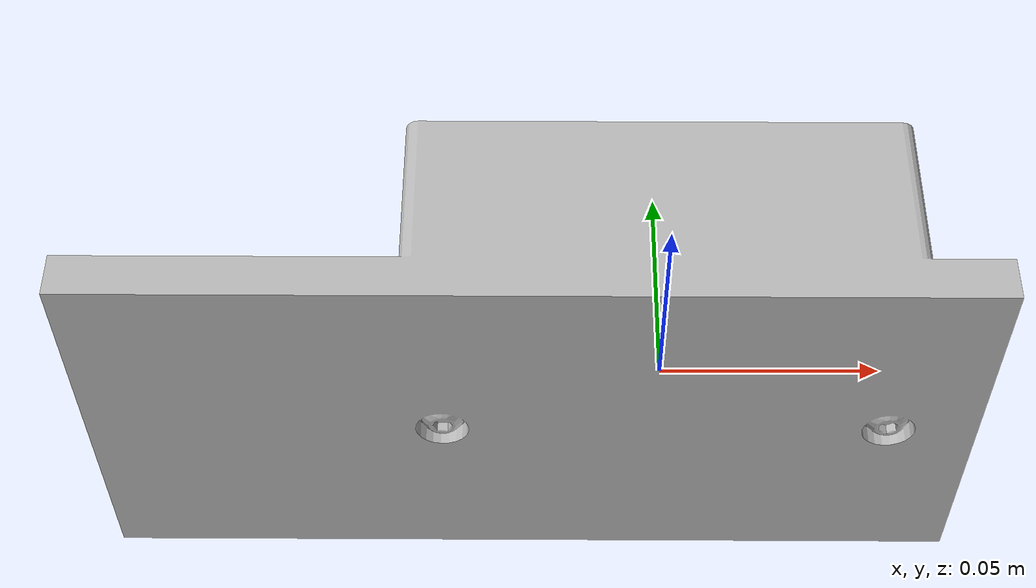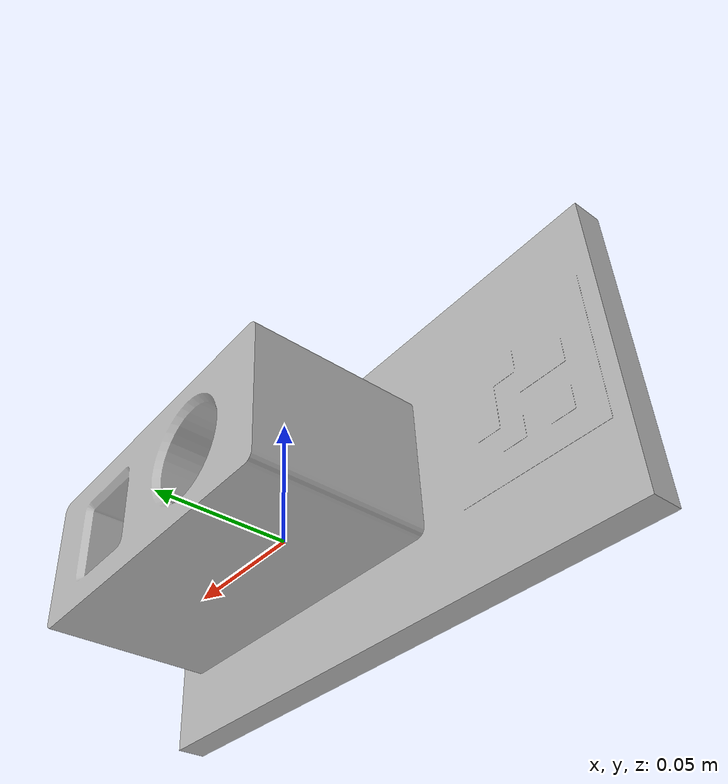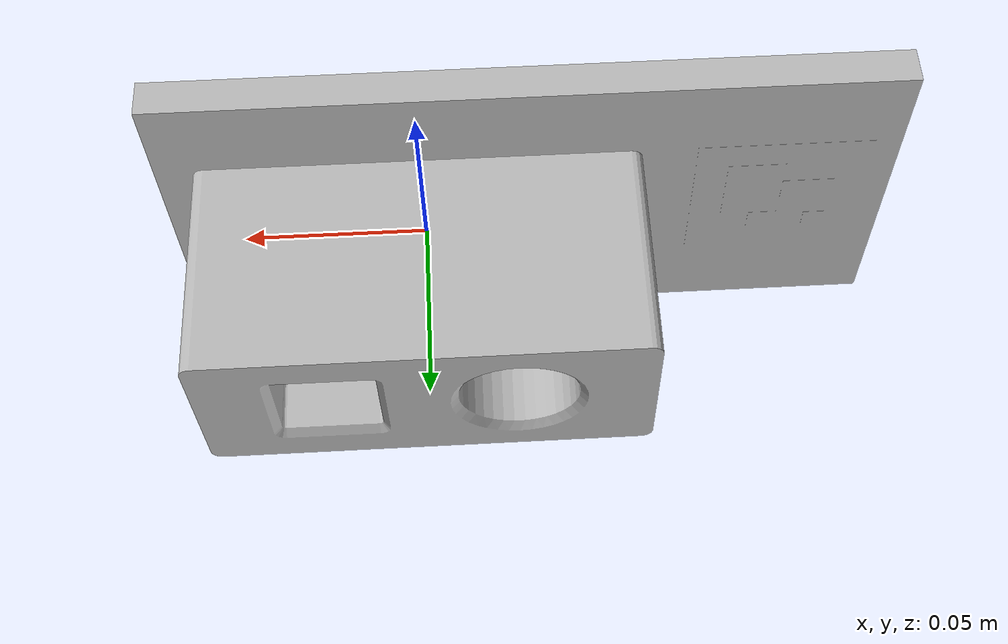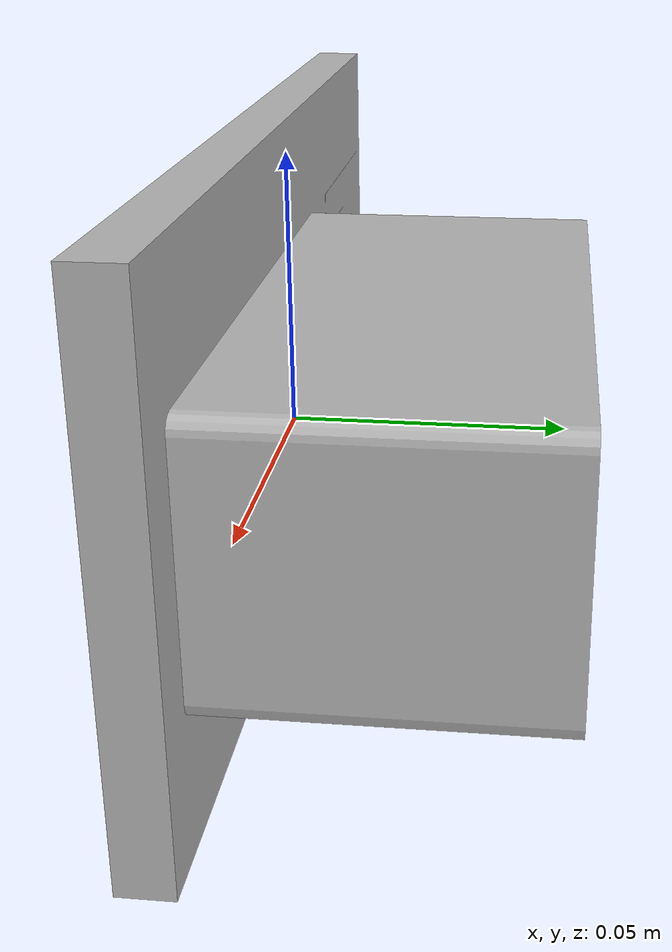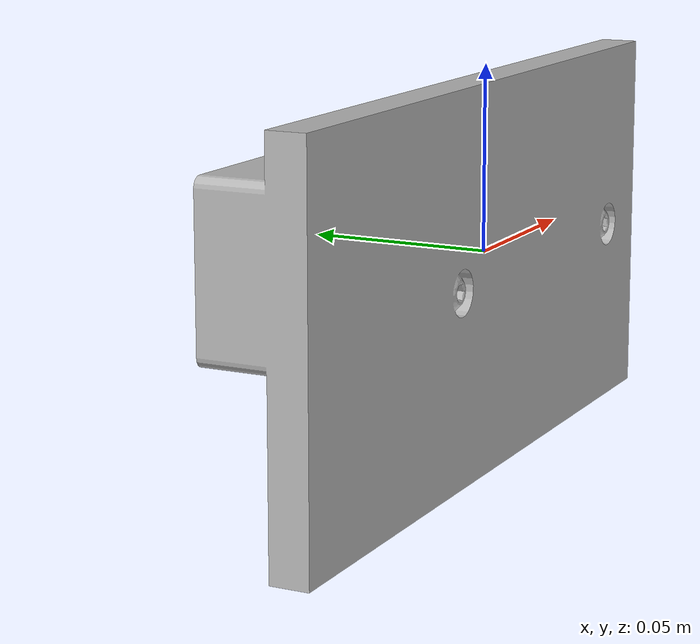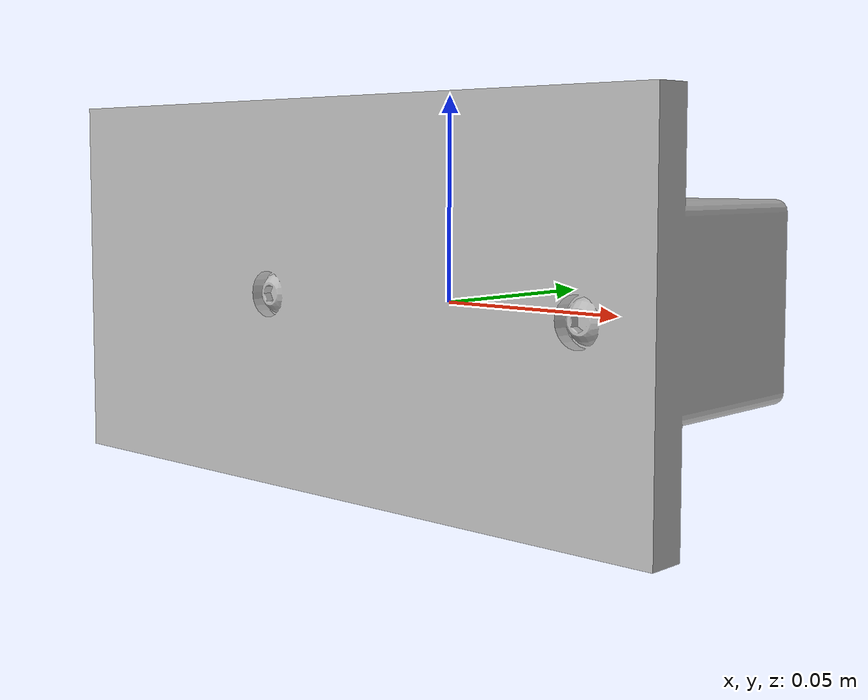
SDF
<?xml version="1.0" ?>
<sdf version="1.5">
  <model name="placement_station">
    <static>false</static>
    <link name="link">
      <pose>0 0 0 0 0 0</pose>
      <!-- Mass and Inertia properties -->
      <inertial>
        <mass>1.0</mass> <!-- Adjust the mass to match your model -->
        <inertia>
          <!-- Adjust these values based on the actual physical properties of your model -->
          <ixx>0.1</ixx>
          <ixy>0.0</ixy>
          <ixz>0.0</ixz>
          <iyy>0.1</iyy>
          <iyz>0.0</iyz>
          <izz>0.1</izz>
        </inertia>
      </inertial>
      <collision name="collision">
        <geometry>
          <mesh>
            <uri>model://placement_station/meshes/placement_station.obj</uri>
            <scale>1 1 1</scale>
          </mesh>
        </geometry>
      </collision>
      <visual name="visual">
        <geometry>
          <mesh>
            <uri>model://placement_station/meshes/placement_station.obj</uri>
            <scale>1 1 1</scale>
          </mesh>
        </geometry>
      </visual>
    </link>
  </model>
</sdf>
